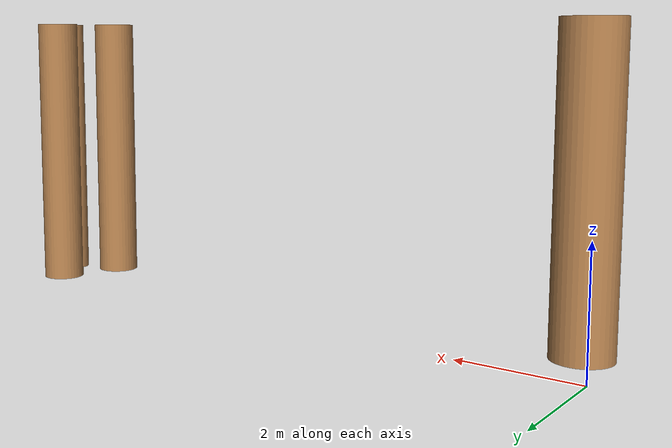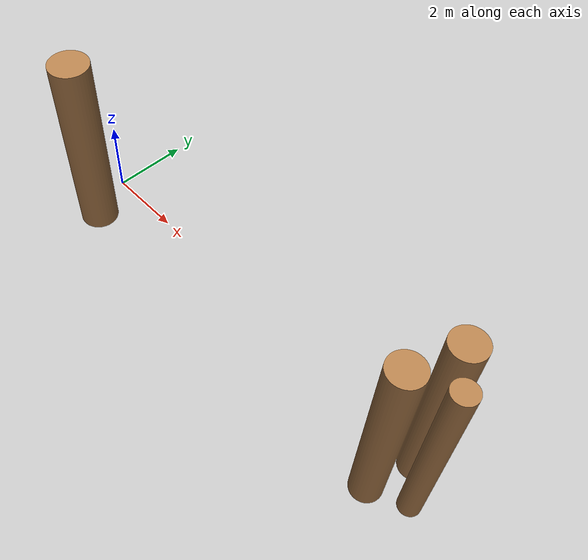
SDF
<?xml version="1.0" ?>
<sdf version="1.5">
  <model name="broken_bridge">
    <link name="link">
    <inertial>
        <!-- Mass determined based on buoyancy geometry so object
             floats at mid-point of sphere -->
        <mass>20</mass>
        <!-- Mark only - based on cylinder -->
        <inertia>
          <ixx>1.0</ixx>
          <ixy>0</ixy>
          <ixz>0</ixz>
          <iyy>1.0</iyy>
          <iyz>0</iyz>
          <izz>0.1</izz>
        </inertia>
      </inertial>
      <collision name="collision">
        <geometry>
          <box>
            <size>3 3 3.5</size>
            <scale>0.05 0.05 0.05</scale>
          </box>
        </geometry>
        <surface>
          <friction>
            <ode>
              <mu>100</mu>
              <mu2>50</mu2>
            </ode>
          </friction>
        </surface>
      </collision>
      <visual name="visual">
        <pose>0 0 0 1.5708 0 0</pose>
        <geometry>
          <mesh>
            <uri>model://broken_bridge/meshes/Broken Bridge.STL</uri>
            <scale>0.05 0.05 0.05</scale>
          </mesh>
        </geometry>
        <material>
          <script>
            <uri>file://media/materials/scripts/gazebo.material</uri>
            <name>Gazebo/Wood</name>
          </script>
        </material>
      </visual>
    </link>
   <plugin name="BuoyancyPlugin" filename="libbuoyancy_gazebo_plugin.so">
      <wave_model>ocean_waves</wave_model>
      <fluid_density>1000</fluid_density>
      <fluid_level>0.0</fluid_level>
      <linear_drag>25.0</linear_drag>
      <angular_drag>2.0</angular_drag>
      <buoyancy name="buoyancy_sphere">
        <link_name>link</link_name>
        <pose>0 0 -0.02 0 0 0</pose>
        <geometry>
          <sphere>
            <radius>0.25</radius>
          </sphere>
        </geometry>
      </buoyancy>
    </plugin>

  </model>
</sdf>
